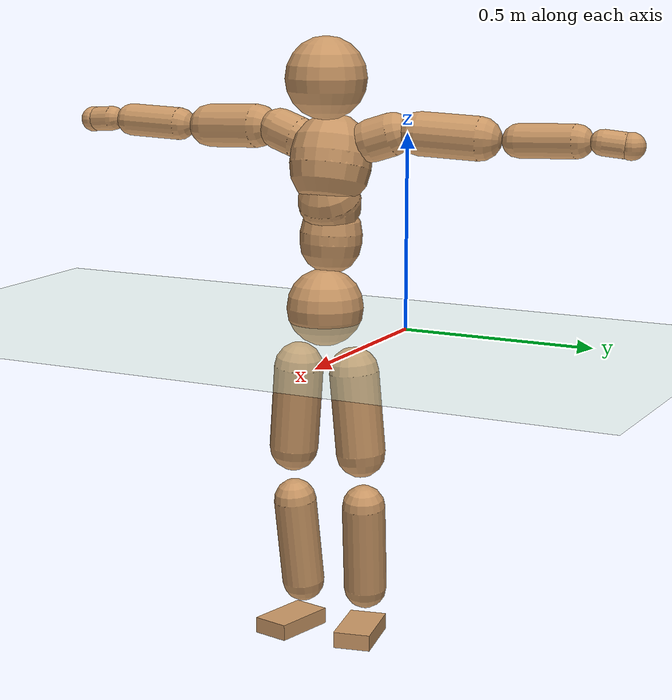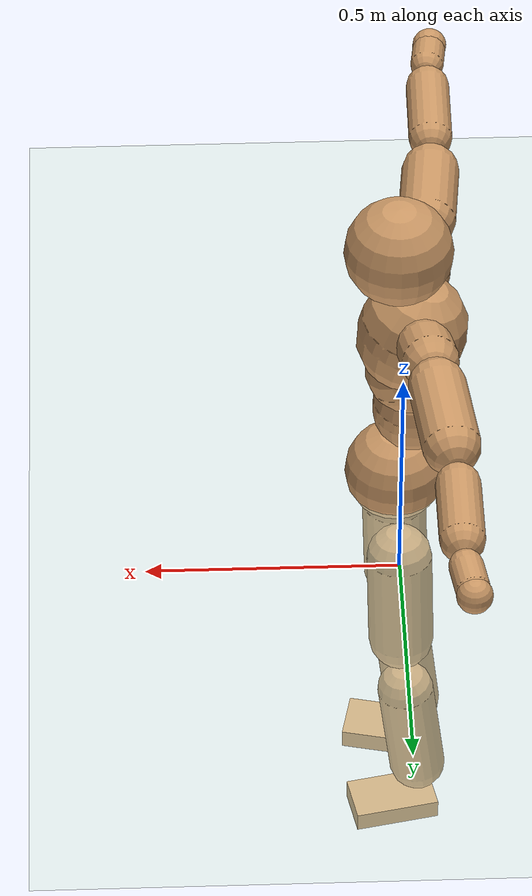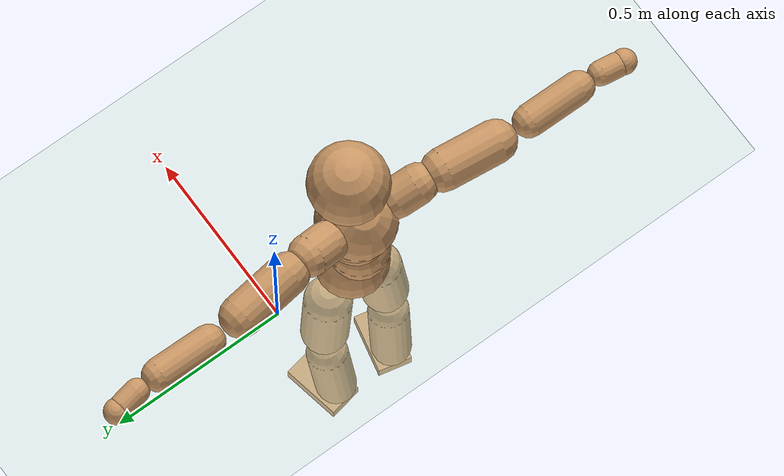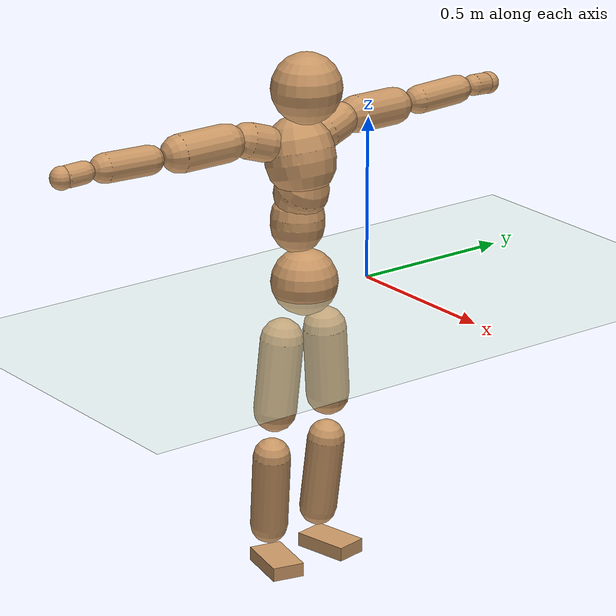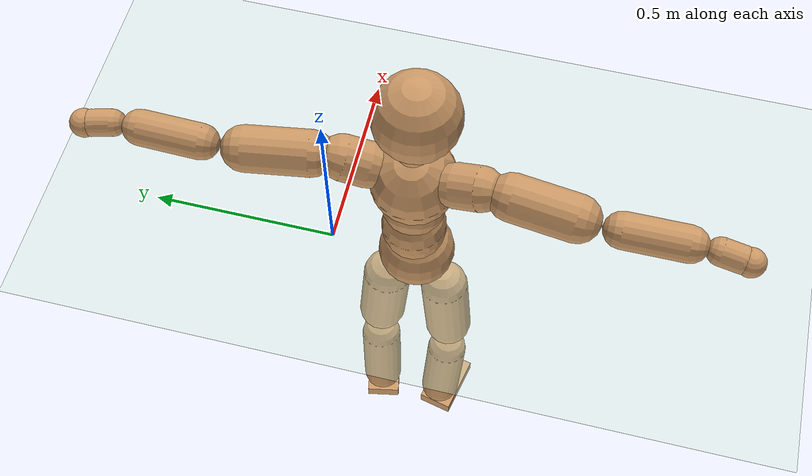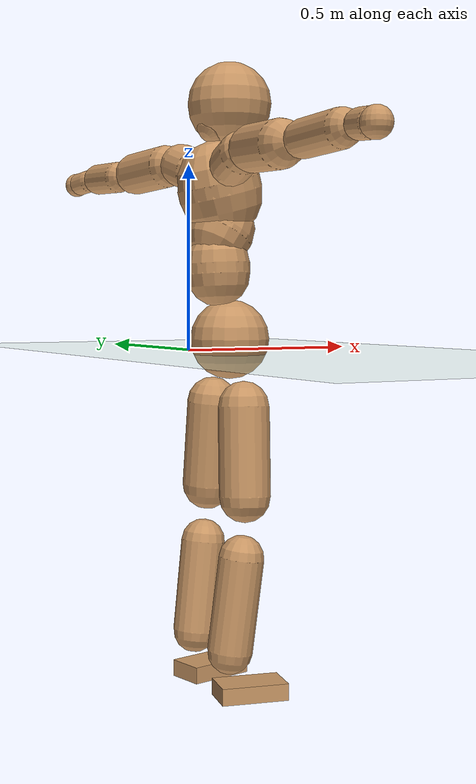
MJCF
<mujoco model="humanoid">
  <compiler coordinate="local"/>
  <default>
    <joint damping="0.0" armature="0.01" stiffness="0.0" limited="true"/>
    <geom conaffinity="1" condim="3" contype="7" margin="0.001" rgba="0.8 0.6 .4 1"/>
  </default>
  <asset>
    <texture type="skybox" builtin="gradient" rgb1=".4 .5 .6" rgb2="0 0 0" width="100" height="100"/>
    <texture builtin="flat" height="1278" mark="cross" markrgb="1 1 1" name="texgeom" random="0.01" rgb1="0.8 0.6 0.4" rgb2="0.8 0.6 0.4" type="cube" width="127"/>
    <texture builtin="checker" height="100" name="texplane" rgb1="0 0 0" rgb2="0.8 0.8 0.8" type="2d" width="100"/>
    <material name="MatPlane" reflectance="0.5" shininess="1" specular="1" texrepeat="60 60" texture="texplane"/>
    <material name="geom" texture="texgeom" texuniform="true"/>
  </asset>
  <worldbody>
    <light cutoff="100" diffuse="1 1 1" dir="-0 0 -1.3" directional="true" exponent="1" pos="0 0 1.3" specular=".1 .1 .1"/>
    <geom conaffinity="1" condim="3" name="floor" pos="0 0 0" rgba="0.8 0.9 0.8 1" size="100 100 .2" type="plane" material="MatPlane"/>
    <body name="Pelvis" pos="-0.0024 -0.2335 0.0364">
      <freejoint name="Pelvis"/>
      <geom type="sphere" contype="1" conaffinity="1" density="500" size="0.1012" pos="0.0000 0.0000 0.0000" name="Pelvis"/>
      <body name="L_Hip" pos="-0.0046 0.0752 -0.0934">
        <joint name="L_Hip_x" type="hinge" pos="0 0 0" axis="1 0 0" stiffness="800" damping="80" armature="0.02" range="-180.0000 180.0000"/>
        <joint name="L_Hip_y" type="hinge" pos="0 0 0" axis="0 1 0" stiffness="800" damping="80" armature="0.02" range="-180.0000 180.0000"/>
        <joint name="L_Hip_z" type="hinge" pos="0 0 0" axis="0 0 1" stiffness="800" damping="80" armature="0.02" range="-180.0000 180.0000"/>
        <geom type="capsule" contype="1" conaffinity="1" density="500" fromto="-0.0019 0.0057 -0.0726 -0.0076 0.0229 -0.2903" size="0.0657" name="L_Hip"/>
        <body name="L_Knee" pos="-0.0095 0.0287 -0.3629">
          <joint name="L_Knee_x" type="hinge" pos="0 0 0" axis="1 0 0" stiffness="800" damping="80" armature="0.02" range="-180.0000 180.0000"/>
          <joint name="L_Knee_y" type="hinge" pos="0 0 0" axis="0 1 0" stiffness="800" damping="80" armature="0.02" range="-180.0000 180.0000"/>
          <joint name="L_Knee_z" type="hinge" pos="0 0 0" axis="0 0 1" stiffness="800" damping="80" armature="0.02" range="-180.0000 180.0000"/>
          <geom type="capsule" contype="1" conaffinity="1" density="500" fromto="-0.0094 -0.0027 -0.0782 -0.0377 -0.0108 -0.3127" size="0.0574" name="L_Knee"/>
          <body name="L_Ankle" pos="-0.0472 -0.0135 -0.3909">
            <joint name="L_Ankle_x" type="hinge" pos="0 0 0" axis="1 0 0" stiffness="800" damping="80" armature="0.02" range="-180.0000 180.0000"/>
            <joint name="L_Ankle_y" type="hinge" pos="0 0 0" axis="0 1 0" stiffness="800" damping="80" armature="0.02" range="-180.0000 180.0000"/>
            <joint name="L_Ankle_z" type="hinge" pos="0 0 0" axis="0 0 1" stiffness="800" damping="80" armature="0.02" range="-180.0000 180.0000"/>
            <geom type="box" contype="1" conaffinity="1" density="500" pos="0.0600 0.0116 -0.0279" size="0.0865 0.0492 0.0214" quat="0.9954 0.0000 0.0000 0.0957" name="L_Ankle"/>
            <body name="L_Toe" pos="0.1199 0.0233 -0.0557">
              <joint name="L_Toe_x" type="hinge" pos="0 0 0" axis="1 0 0" stiffness="500" damping="50" armature="0.02" range="-180.0000 180.0000"/>
              <joint name="L_Toe_y" type="hinge" pos="0 0 0" axis="0 1 0" stiffness="500" damping="50" armature="0.02" range="-180.0000 180.0000"/>
              <joint name="L_Toe_z" type="hinge" pos="0 0 0" axis="0 0 1" stiffness="500" damping="50" armature="0.02" range="-180.0000 180.0000"/>
              <geom type="box" contype="1" conaffinity="1" density="500" pos="0.0000 0.0000 0.0272" size="0.001 0.0025 0.001" quat="0.9948 0.0000 0.0000 0.1021" name="L_Toe"/>
            </body>
          </body>
        </body>
      </body>
      <body name="R_Hip" pos="-0.0014 -0.0737 -0.0927">
        <joint name="R_Hip_x" type="hinge" pos="0 0 0" axis="1 0 0" stiffness="800" damping="80" armature="0.02" range="-180.0000 180.0000"/>
        <joint name="R_Hip_y" type="hinge" pos="0 0 0" axis="0 1 0" stiffness="800" damping="80" armature="0.02" range="-180.0000 180.0000"/>
        <joint name="R_Hip_z" type="hinge" pos="0 0 0" axis="0 0 1" stiffness="800" damping="80" armature="0.02" range="-180.0000 180.0000"/>
        <geom type="capsule" contype="1" conaffinity="1" density="500" fromto="-0.0025 -0.0068 -0.0745 -0.0102 -0.0271 -0.2979" size="0.065" name="R_Hip"/>
        <body name="R_Knee" pos="-0.0127 -0.0339 -0.3723">
          <joint name="R_Knee_x" type="hinge" pos="0 0 0" axis="1 0 0" stiffness="800" damping="80" armature="0.02" range="-180.0000 180.0000"/>
          <joint name="R_Knee_y" type="hinge" pos="0 0 0" axis="0 1 0" stiffness="800" damping="80" armature="0.02" range="-180.0000 180.0000"/>
          <joint name="R_Knee_z" type="hinge" pos="0 0 0" axis="0 0 1" stiffness="800" damping="80" armature="0.02" range="-180.0000 180.0000"/>
          <geom type="capsule" contype="1" conaffinity="1" density="500" fromto="-0.0092 0.0031 -0.0784 -0.0368 0.0124 -0.3136" size="0.0572" name="R_Knee"/>
          <body name="R_Ankle" pos="-0.046 0.0154 -0.392">
            <joint name="R_Ankle_x" type="hinge" pos="0 0 0" axis="1 0 0" stiffness="800" damping="80" armature="0.02" range="-180.0000 180.0000"/>
            <joint name="R_Ankle_y" type="hinge" pos="0 0 0" axis="0 1 0" stiffness="800" damping="80" armature="0.02" range="-180.0000 180.0000"/>
            <joint name="R_Ankle_z" type="hinge" pos="0 0 0" axis="0 0 1" stiffness="800" damping="80" armature="0.02" range="-180.0000 180.0000"/>
            <geom type="box" contype="1" conaffinity="1" density="500" pos="0.0618 -0.0136 -0.0237" size="0.0862 0.0496 0.0213" quat="0.9941 0.0000 0.0000 -0.1085" name="R_Ankle"/>
            <body name="R_Toe" pos="0.1236 -0.0273 -0.0473">
              <joint name="R_Toe_x" type="hinge" pos="0 0 0" axis="1 0 0" stiffness="500" damping="50" armature="0.02" range="-180.0000 180.0000"/>
              <joint name="R_Toe_y" type="hinge" pos="0 0 0" axis="0 1 0" stiffness="500" damping="50" armature="0.02" range="-180.0000 180.0000"/>
              <joint name="R_Toe_z" type="hinge" pos="0 0 0" axis="0 0 1" stiffness="500" damping="50" armature="0.02" range="-180.0000 180.0000"/>
              <geom type="box" contype="1" conaffinity="1" density="500" pos="0.0000 0.0000 0.0245" size="0.001 0.0025 0.0011" quat="0.9951 0.0000 0.0000 -0.0992" name="R_Toe"/>
            </body>
          </body>
        </body>
      </body>
      <body name="Torso" pos="-0.032 -0.0025 0.1113">
        <joint name="Torso_x" type="hinge" pos="0 0 0" axis="1 0 0" stiffness="1000" damping="100" armature="0.02" range="-180.0000 180.0000"/>
        <joint name="Torso_y" type="hinge" pos="0 0 0" axis="0 1 0" stiffness="1000" damping="100" armature="0.02" range="-180.0000 180.0000"/>
        <joint name="Torso_z" type="hinge" pos="0 0 0" axis="0 0 1" stiffness="1000" damping="100" armature="0.02" range="-180.0000 180.0000"/>
        <geom type="capsule" contype="1" conaffinity="1" density="500" fromto="-0.0023 0.0031 0.0808 -0.0015 0.0021 0.0539" size="0.0815" name="Torso"/>
        <body name="Spine" pos="-0.0038 0.0051 0.1346">
          <joint name="Spine_x" type="hinge" pos="0 0 0" axis="1 0 0" stiffness="1000" damping="100" armature="0.02" range="-180.0000 180.0000"/>
          <joint name="Spine_y" type="hinge" pos="0 0 0" axis="0 1 0" stiffness="1000" damping="100" armature="0.02" range="-180.0000 180.0000"/>
          <joint name="Spine_z" type="hinge" pos="0 0 0" axis="0 0 1" stiffness="1000" damping="100" armature="0.02" range="-180.0000 180.0000"/>
          <geom type="capsule" contype="1" conaffinity="1" density="500" fromto="0.0183 0.0012 0.0328 0.0122 0.0008 0.0218" size="0.0819" name="Spine"/>
          <body name="Chest" pos="0.0304 0.0019 0.0546">
            <joint name="Chest_x" type="hinge" pos="0 0 0" axis="1 0 0" stiffness="1000" damping="100" armature="0.02" range="-180.0000 180.0000"/>
            <joint name="Chest_y" type="hinge" pos="0 0 0" axis="0 1 0" stiffness="1000" damping="100" armature="0.02" range="-180.0000 180.0000"/>
            <joint name="Chest_z" type="hinge" pos="0 0 0" axis="0 0 1" stiffness="1000" damping="100" armature="0.02" range="-180.0000 180.0000"/>
            <geom type="capsule" contype="1" conaffinity="1" density="500" fromto="-0.0260 -0.0011 0.0949 -0.0174 -0.0007 0.0633" size="0.1061" name="Chest"/>
            <body name="Neck" pos="-0.0485 -0.0031 0.2242">
              <joint name="Neck_x" type="hinge" pos="0 0 0" axis="1 0 0" stiffness="500" damping="50" armature="0.02" range="-180.0000 180.0000"/>
              <joint name="Neck_y" type="hinge" pos="0 0 0" axis="0 1 0" stiffness="500" damping="50" armature="0.02" range="-180.0000 180.0000"/>
              <joint name="Neck_z" type="hinge" pos="0 0 0" axis="0 0 1" stiffness="500" damping="50" armature="0.02" range="-180.0000 180.0000"/>
              <geom type="capsule" contype="1" conaffinity="1" density="500" fromto="0.0112 0.0008 0.0135 0.0447 0.0032 0.0539" size="0.0456" name="Neck"/>
              <body name="Head" pos="0.0558 0.0041 0.0674">
                <joint name="Head_x" type="hinge" pos="0 0 0" axis="1 0 0" stiffness="500" damping="50" armature="0.02" range="-180.0000 180.0000"/>
                <joint name="Head_y" type="hinge" pos="0 0 0" axis="0 1 0" stiffness="500" damping="50" armature="0.02" range="-180.0000 180.0000"/>
                <joint name="Head_z" type="hinge" pos="0 0 0" axis="0 0 1" stiffness="500" damping="50" armature="0.02" range="-180.0000 180.0000"/>
                <geom type="sphere" contype="1" conaffinity="1" density="500" size="0.1063" pos="0.0000 0.0000 0.0000" name="Head"/>
              </body>
            </body>
            <body name="L_Thorax" pos="-0.038 0.0845 0.1266">
              <joint name="L_Thorax_x" type="hinge" pos="0 0 0" axis="1 0 0" stiffness="500" damping="50" armature="0.02" range="-180.0000 180.0000"/>
              <joint name="L_Thorax_y" type="hinge" pos="0 0 0" axis="0 1 0" stiffness="500" damping="50" armature="0.02" range="-180.0000 180.0000"/>
              <joint name="L_Thorax_z" type="hinge" pos="0 0 0" axis="0 0 1" stiffness="500" damping="50" armature="0.02" range="-180.0000 180.0000"/>
              <geom type="capsule" contype="1" conaffinity="1" density="500" fromto="-0.0024 0.0194 0.0063 -0.0095 0.0775 0.0252" size="0.056" name="L_Thorax"/>
              <body name="L_Shoulder" pos="-0.0119 0.0968 0.0315">
                <joint name="L_Shoulder_x" type="hinge" pos="0 0 0" axis="1 0 0" stiffness="500" damping="50" armature="0.02" range="-720.0000 720.0000"/>
                <joint name="L_Shoulder_y" type="hinge" pos="0 0 0" axis="0 1 0" stiffness="500" damping="50" armature="0.02" range="-720.0000 720.0000"/>
                <joint name="L_Shoulder_z" type="hinge" pos="0 0 0" axis="0 0 1" stiffness="500" damping="50" armature="0.02" range="-720.0000 720.0000"/>
                <geom type="capsule" contype="1" conaffinity="1" density="500" fromto="-0.0062 0.0522 -0.0025 -0.0250 0.2087 -0.0099" size="0.0563" name="L_Shoulder"/>
                <body name="L_Elbow" pos="-0.0312 0.2609 -0.0124">
                  <joint name="L_Elbow_x" type="hinge" pos="0 0 0" axis="1 0 0" stiffness="500" damping="50" armature="0.02" range="-720.0000 720.0000"/>
                  <joint name="L_Elbow_y" type="hinge" pos="0 0 0" axis="0 1 0" stiffness="500" damping="50" armature="0.02" range="-720.0000 720.0000"/>
                  <joint name="L_Elbow_z" type="hinge" pos="0 0 0" axis="0 0 1" stiffness="500" damping="50" armature="0.02" range="-720.0000 720.0000"/>
                  <geom type="capsule" contype="1" conaffinity="1" density="500" fromto="0.0003 0.0499 0.0020 0.0011 0.1997 0.0079" size="0.0435" name="L_Elbow"/>
                  <body name="L_Wrist" pos="0.0013 0.2496 0.0099">
                    <joint name="L_Wrist_x" type="hinge" pos="0 0 0" axis="1 0 0" stiffness="300" damping="30" armature="0.02" range="-180.0000 180.0000"/>
                    <joint name="L_Wrist_y" type="hinge" pos="0 0 0" axis="0 1 0" stiffness="300" damping="30" armature="0.02" range="-180.0000 180.0000"/>
                    <joint name="L_Wrist_z" type="hinge" pos="0 0 0" axis="0 0 1" stiffness="300" damping="30" armature="0.02" range="-180.0000 180.0000"/>
                    <geom type="capsule" contype="1" conaffinity="1" density="500" fromto="-0.0029 0.0172 -0.0018 -0.0118 0.0687 -0.0071" size="0.0328" name="L_Wrist"/>
                    <body name="L_Hand" pos="-0.0147 0.0858 -0.0088">
                      <joint name="L_Hand_x" type="hinge" pos="0 0 0" axis="1 0 0" stiffness="300" damping="30" armature="0.02" range="-180.0000 180.0000"/>
                      <joint name="L_Hand_y" type="hinge" pos="0 0 0" axis="0 1 0" stiffness="300" damping="30" armature="0.02" range="-180.0000 180.0000"/>
                      <joint name="L_Hand_z" type="hinge" pos="0 0 0" axis="0 0 1" stiffness="300" damping="30" armature="0.02" range="-180.0000 180.0000"/>
                      <geom type="sphere" contype="1" conaffinity="1" density="500" size="0.0345" pos="0.0000 0.0000 0.0000" name="L_Hand"/>
                    </body>
                  </body>
                </body>
              </body>
            </body>
            <body name="R_Thorax" pos="-0.0437 -0.0868 0.1236">
              <joint name="R_Thorax_x" type="hinge" pos="0 0 0" axis="1 0 0" stiffness="500" damping="50" armature="0.02" range="-180.0000 180.0000"/>
              <joint name="R_Thorax_y" type="hinge" pos="0 0 0" axis="0 1 0" stiffness="500" damping="50" armature="0.02" range="-180.0000 180.0000"/>
              <joint name="R_Thorax_z" type="hinge" pos="0 0 0" axis="0 0 1" stiffness="500" damping="50" armature="0.02" range="-180.0000 180.0000"/>
              <geom type="capsule" contype="1" conaffinity="1" density="500" fromto="-0.0026 -0.0200 0.0065 -0.0103 -0.0801 0.0259" size="0.0544" name="R_Thorax"/>
              <body name="R_Shoulder" pos="-0.0129 -0.1002 0.0324">
                <joint name="R_Shoulder_x" type="hinge" pos="0 0 0" axis="1 0 0" stiffness="500" damping="50" armature="0.02" range="-720.0000 720.0000"/>
                <joint name="R_Shoulder_y" type="hinge" pos="0 0 0" axis="0 1 0" stiffness="500" damping="50" armature="0.02" range="-720.0000 720.0000"/>
                <joint name="R_Shoulder_z" type="hinge" pos="0 0 0" axis="0 0 1" stiffness="500" damping="50" armature="0.02" range="-720.0000 720.0000"/>
                <geom type="capsule" contype="1" conaffinity="1" density="500" fromto="-0.0051 -0.0508 -0.0023 -0.0206 -0.2034 -0.0091" size="0.0574" name="R_Shoulder"/>
                <body name="R_Elbow" pos="-0.0257 -0.2542 -0.0113">
                  <joint name="R_Elbow_x" type="hinge" pos="0 0 0" axis="1 0 0" stiffness="500" damping="50" armature="0.02" range="-720.0000 720.0000"/>
                  <joint name="R_Elbow_y" type="hinge" pos="0 0 0" axis="0 1 0" stiffness="500" damping="50" armature="0.02" range="-720.0000 720.0000"/>
                  <joint name="R_Elbow_z" type="hinge" pos="0 0 0" axis="0 0 1" stiffness="500" damping="50" armature="0.02" range="-720.0000 720.0000"/>
                  <geom type="capsule" contype="1" conaffinity="1" density="500" fromto="-0.0007 -0.0506 0.0015 -0.0027 -0.2022 0.0060" size="0.0437" name="R_Elbow"/>
                  <body name="R_Wrist" pos="-0.0034 -0.2528 0.0074">
                    <joint name="R_Wrist_x" type="hinge" pos="0 0 0" axis="1 0 0" stiffness="300" damping="30" armature="0.02" range="-180.0000 180.0000"/>
                    <joint name="R_Wrist_y" type="hinge" pos="0 0 0" axis="0 1 0" stiffness="300" damping="30" armature="0.02" range="-180.0000 180.0000"/>
                    <joint name="R_Wrist_z" type="hinge" pos="0 0 0" axis="0 0 1" stiffness="300" damping="30" armature="0.02" range="-180.0000 180.0000"/>
                    <geom type="capsule" contype="1" conaffinity="1" density="500" fromto="-0.0021 -0.0171 -0.0013 -0.0085 -0.0684 -0.0054" size="0.0333" name="R_Wrist"/>
                    <body name="R_Hand" pos="-0.0107 -0.0855 -0.0067">
                      <joint name="R_Hand_x" type="hinge" pos="0 0 0" axis="1 0 0" stiffness="300" damping="30" armature="0.02" range="-180.0000 180.0000"/>
                      <joint name="R_Hand_y" type="hinge" pos="0 0 0" axis="0 1 0" stiffness="300" damping="30" armature="0.02" range="-180.0000 180.0000"/>
                      <joint name="R_Hand_z" type="hinge" pos="0 0 0" axis="0 0 1" stiffness="300" damping="30" armature="0.02" range="-180.0000 180.0000"/>
                      <geom type="sphere" contype="1" conaffinity="1" density="500" size="0.0345" pos="0.0000 0.0000 0.0000" name="R_Hand"/>
                    </body>
                  </body>
                </body>
              </body>
            </body>
          </body>
        </body>
      </body>
    </body>
  </worldbody>
  <actuator>
    <motor name="L_Hip_x" joint="L_Hip_x" gear="500"/>
    <motor name="L_Hip_y" joint="L_Hip_y" gear="500"/>
    <motor name="L_Hip_z" joint="L_Hip_z" gear="500"/>
    <motor name="L_Knee_x" joint="L_Knee_x" gear="500"/>
    <motor name="L_Knee_y" joint="L_Knee_y" gear="500"/>
    <motor name="L_Knee_z" joint="L_Knee_z" gear="500"/>
    <motor name="L_Ankle_x" joint="L_Ankle_x" gear="500"/>
    <motor name="L_Ankle_y" joint="L_Ankle_y" gear="500"/>
    <motor name="L_Ankle_z" joint="L_Ankle_z" gear="500"/>
    <motor name="L_Toe_x" joint="L_Toe_x" gear="500"/>
    <motor name="L_Toe_y" joint="L_Toe_y" gear="500"/>
    <motor name="L_Toe_z" joint="L_Toe_z" gear="500"/>
    <motor name="R_Hip_x" joint="R_Hip_x" gear="500"/>
    <motor name="R_Hip_y" joint="R_Hip_y" gear="500"/>
    <motor name="R_Hip_z" joint="R_Hip_z" gear="500"/>
    <motor name="R_Knee_x" joint="R_Knee_x" gear="500"/>
    <motor name="R_Knee_y" joint="R_Knee_y" gear="500"/>
    <motor name="R_Knee_z" joint="R_Knee_z" gear="500"/>
    <motor name="R_Ankle_x" joint="R_Ankle_x" gear="500"/>
    <motor name="R_Ankle_y" joint="R_Ankle_y" gear="500"/>
    <motor name="R_Ankle_z" joint="R_Ankle_z" gear="500"/>
    <motor name="R_Toe_x" joint="R_Toe_x" gear="500"/>
    <motor name="R_Toe_y" joint="R_Toe_y" gear="500"/>
    <motor name="R_Toe_z" joint="R_Toe_z" gear="500"/>
    <motor name="Torso_x" joint="Torso_x" gear="500"/>
    <motor name="Torso_y" joint="Torso_y" gear="500"/>
    <motor name="Torso_z" joint="Torso_z" gear="500"/>
    <motor name="Spine_x" joint="Spine_x" gear="500"/>
    <motor name="Spine_y" joint="Spine_y" gear="500"/>
    <motor name="Spine_z" joint="Spine_z" gear="500"/>
    <motor name="Chest_x" joint="Chest_x" gear="500"/>
    <motor name="Chest_y" joint="Chest_y" gear="500"/>
    <motor name="Chest_z" joint="Chest_z" gear="500"/>
    <motor name="Neck_x" joint="Neck_x" gear="500"/>
    <motor name="Neck_y" joint="Neck_y" gear="500"/>
    <motor name="Neck_z" joint="Neck_z" gear="500"/>
    <motor name="Head_x" joint="Head_x" gear="500"/>
    <motor name="Head_y" joint="Head_y" gear="500"/>
    <motor name="Head_z" joint="Head_z" gear="500"/>
    <motor name="L_Thorax_x" joint="L_Thorax_x" gear="500"/>
    <motor name="L_Thorax_y" joint="L_Thorax_y" gear="500"/>
    <motor name="L_Thorax_z" joint="L_Thorax_z" gear="500"/>
    <motor name="L_Shoulder_x" joint="L_Shoulder_x" gear="500"/>
    <motor name="L_Shoulder_y" joint="L_Shoulder_y" gear="500"/>
    <motor name="L_Shoulder_z" joint="L_Shoulder_z" gear="500"/>
    <motor name="L_Elbow_x" joint="L_Elbow_x" gear="500"/>
    <motor name="L_Elbow_y" joint="L_Elbow_y" gear="500"/>
    <motor name="L_Elbow_z" joint="L_Elbow_z" gear="500"/>
    <motor name="L_Wrist_x" joint="L_Wrist_x" gear="500"/>
    <motor name="L_Wrist_y" joint="L_Wrist_y" gear="500"/>
    <motor name="L_Wrist_z" joint="L_Wrist_z" gear="500"/>
    <motor name="L_Hand_x" joint="L_Hand_x" gear="500"/>
    <motor name="L_Hand_y" joint="L_Hand_y" gear="500"/>
    <motor name="L_Hand_z" joint="L_Hand_z" gear="500"/>
    <motor name="R_Thorax_x" joint="R_Thorax_x" gear="500"/>
    <motor name="R_Thorax_y" joint="R_Thorax_y" gear="500"/>
    <motor name="R_Thorax_z" joint="R_Thorax_z" gear="500"/>
    <motor name="R_Shoulder_x" joint="R_Shoulder_x" gear="500"/>
    <motor name="R_Shoulder_y" joint="R_Shoulder_y" gear="500"/>
    <motor name="R_Shoulder_z" joint="R_Shoulder_z" gear="500"/>
    <motor name="R_Elbow_x" joint="R_Elbow_x" gear="500"/>
    <motor name="R_Elbow_y" joint="R_Elbow_y" gear="500"/>
    <motor name="R_Elbow_z" joint="R_Elbow_z" gear="500"/>
    <motor name="R_Wrist_x" joint="R_Wrist_x" gear="500"/>
    <motor name="R_Wrist_y" joint="R_Wrist_y" gear="500"/>
    <motor name="R_Wrist_z" joint="R_Wrist_z" gear="500"/>
    <motor name="R_Hand_x" joint="R_Hand_x" gear="500"/>
    <motor name="R_Hand_y" joint="R_Hand_y" gear="500"/>
    <motor name="R_Hand_z" joint="R_Hand_z" gear="500"/>
  </actuator>
  <contact>
    <exclude body1="Torso" body2="Chest"/>
    <exclude body1="Head" body2="Chest"/>
    <exclude body1="R_Knee" body2="R_Toe"/>
    <exclude body1="R_Knee" body2="L_Ankle"/>
    <exclude body1="R_Knee" body2="L_Toe"/>
    <exclude body1="L_Knee" body2="L_Toe"/>
    <exclude body1="L_Knee" body2="R_Ankle"/>
    <exclude body1="L_Knee" body2="R_Toe"/>
    <exclude body1="L_Shoulder" body2="Chest"/>
    <exclude body1="R_Shoulder" body2="Chest"/>
  </contact>
  <sensor/>
  <size njmax="700" nconmax="700"/>
</mujoco>
